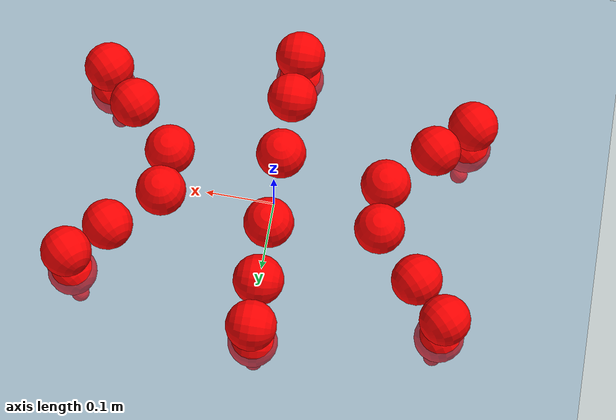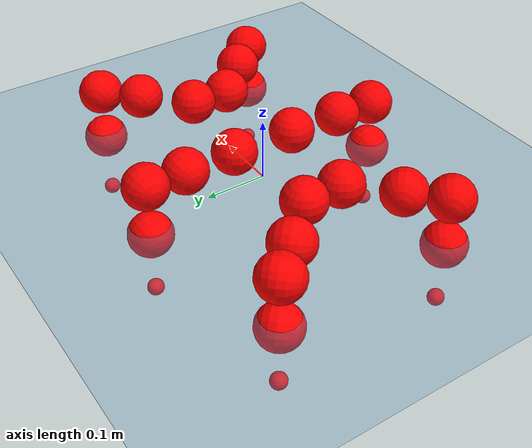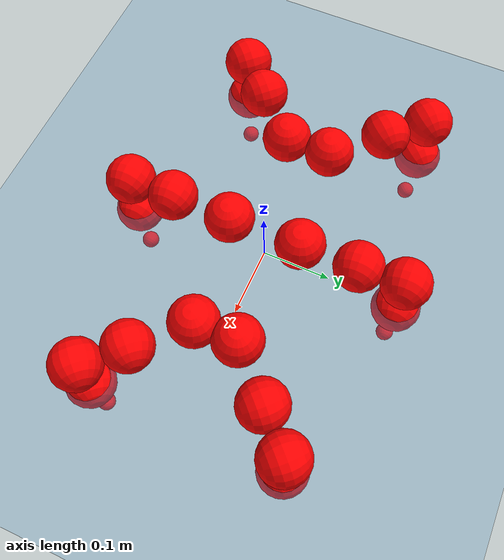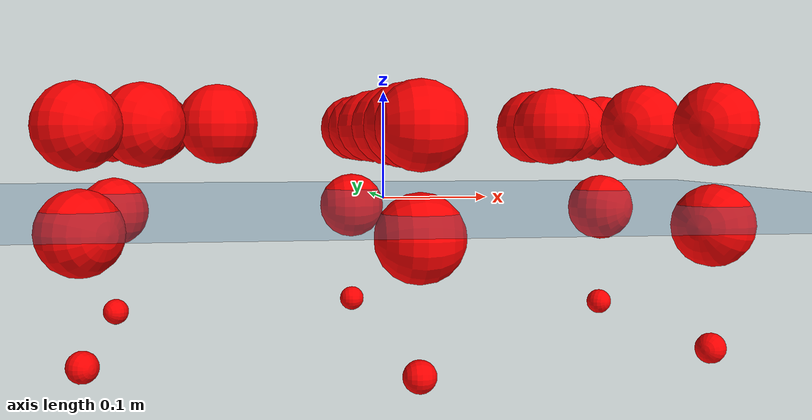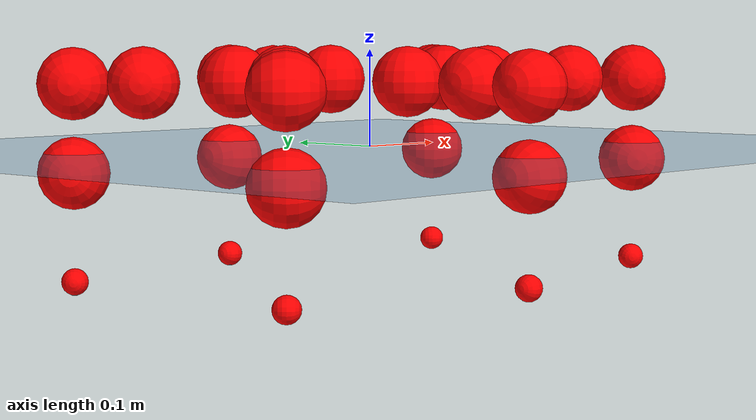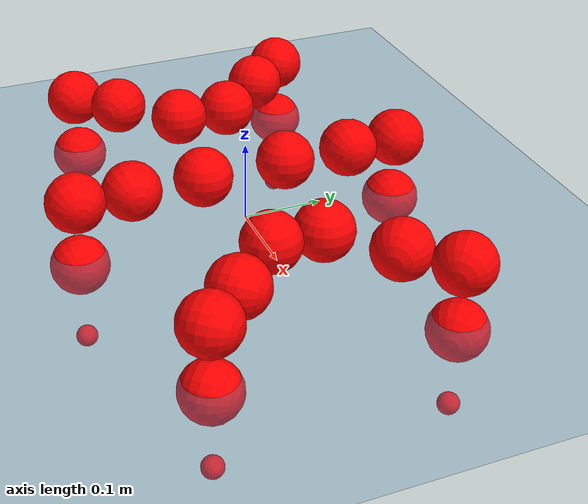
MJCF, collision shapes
<mujoco model="Golem">
  <compiler angle="radian" assetdir="assets" balanceinertia="true" inertiafromgeom="false"/>

  <option timestep="0.005" density="1.2" viscosity="2e-05"/>

  <size nkey="1"/>

  <visual>
    <quality shadowsize="8192"/>
    <map shadowclip="0.5"/>
  </visual>

  <default>
    <default class="/">
      <joint armature="0.01" damping="0.01" frictionloss="0.01"/>
      <geom contype="0" conaffinity="0" group="1" solref="-1000 -80"/>
      <site size="0.01 0.005 0.005" group="5"/>
      <general forcelimited="true" biastype="affine" gainprm="25" biasprm="0 -25 -0.5"/>
      <default class="visual">
        <geom type="mesh" group="2"/>
      </default>
      <default class="collision">
        <geom group="3"/>
      </default>
      <default class="foot">
        <geom size="0.01 0 0" condim="6" group="4" priority="1" solimp="0.015 1 0.01"/>
      </default>
      <default class="reward_collision_sphere">
        <geom group="5" rgba="1 0 0 1"/>
      </default>
    </default>
  </default>

  <asset>
    <texture type="skybox" colorspace="auto" name="//unnamed_texture_0" builtin="gradient" rgb1="0.95 0.95 0.95" rgb2="0.95 0.95 0.95" width="100" height="600"/>
    <texture type="2d" colorspace="auto" name="texplane" builtin="checker" rgb1="0.345 0.575 0.748" rgb2="0.345 0.575 0.748" markrgb="1 1 1" width="512" height="512"/>
    <material name="MatPlane" class="/" texture="texplane" texuniform="true" texrepeat="2 2" specular="0.9"/>
    <mesh name="body" class="/" file="body.stl" scale="0.001 0.001 0.001"/>
    <mesh name="coxa" class="/" file="coxa.stl" scale="0.001 0.001 0.001"/>
    <mesh name="femur" class="/" file="femur.stl" scale="0.001 0.001 0.001"/>
    <mesh name="tibia" class="/" file="tibia.stl" scale="0.001 0.001 0.001"/>
    <mesh name="tarsus" class="/" file="tarsus.stl" scale="0.001 0.001 0.001"/>
  </asset>

  <worldbody>
    <geom name="floor" class="/" size="100 100 0.125" type="plane" group="0" material="MatPlane"/>
    <light name="toplight_shadow" class="/" pos="0 0 5" dir="0.0990148 0.0990148 -0.990148" type="directional" ambient="0.04 0.04 0.04" diffuse="0.55 0.55 0.55" specular="0.12 0.12 0.12"/>
    <light name="toplight_fill" class="/" pos="0 0 5" dir="0.0990148 0.0990148 -0.990148" type="directional" castshadow="false" ambient="0.04 0.04 0.04" diffuse="0.3 0.3 0.3" specular="0.08 0.08 0.08"/>
    <body name="trunk" pos="-0.000400832 0.000469316 -0.000389563" quat="1 6.60342e-05 -0.000135085 0.000118875">
      <inertial pos="-0.000526951 -0.000397023 -0.00276164" quat="0.999991 -0.00307557 0.000425974 -0.00284471" mass="2.68678" diaginertia="0.0100714 0.00103376 0.0133928"/>
      <joint name="//unnamed_joint_0" type="free"/>
      <geom name="//unnamed_geom_1" class="/" pos="0 0 0.0678425" quat="1 0 0 0" type="mesh" rgba="0.9 0.9 0.9 1" mesh="body"/>
      <site name="imu" class="/" pos="0.128814 0.00178929 0.104576" size="0.00897322"/>
      <camera name="track" class="/" pos="0 -1.26667 0" quat="0.707107 0.707107 0 0" mode="trackcom"/>
      <camera name="ego_camera" class="/" pos="0.129817 0 0.106004" quat="-0.5 -0.5 0.5 0.5"/>
      <body name="coxa_RR" pos="-0.176417 -0.0532074 0.0699941" quat="0.38265 0.00012126 4.2768e-06 -0.923893">
        <inertial pos="0.000364133 0.000885716 0.00161389" quat="1 0.000262141 -0.00016604 0.000690172" mass="0.146038" diaginertia="0.0100458 0.00104032 0.0134497"/>
        <joint name="coxa_joint_RR" class="/" pos="0 0 0" axis="0.00196704 -0.00111911 -0.999997" range="-3.12112 3.13962" armature="0.00918463" damping="0" frictionloss="0.00893737"/>
        <geom name="//unnamed_geom_2" class="/" type="mesh" rgba="0.2 0.2 0.2 1" mesh="coxa"/>
        <geom name="//unnamed_geom_3" class="reward_collision_sphere" size="0.0358929" pos="-0.0299577 0 0"/>
        <body name="femur_RR" pos="0.0592283 0.00129457 -0.0015269" quat="0.500262 -0.499785 0.500297 0.499656">
          <inertial pos="0.000396187 -3.38994e-05 0.000947803" quat="1 0.000202878 4.74223e-05 -0.000121578" mass="0.143913" diaginertia="0.00999407 0.00102233 0.0132751"/>
          <joint name="femur_joint_RR" class="/" pos="0 0 0" axis="-0.000441739 0.00106634 -0.999999" range="-3.14028 3.13784" armature="0.00899117" damping="0" frictionloss="0.00870728"/>
          <geom name="//unnamed_geom_4" class="/" type="mesh" rgba="0.9 0.9 0.9 1" mesh="femur"/>
          <geom name="//unnamed_geom_5" class="reward_collision_sphere" size="0.0358929"/>
          <body name="tibia_RR" pos="0.00158665 -0.0671424 0.000106079" quat="4.03897e-06 1 3.38564e-05 -3.7289e-06">
            <inertial pos="0.000291853 -0.000295307 -0.000341621" quat="0.999996 0.00177592 0.000403609 -0.00216596" mass="0.14436" diaginertia="0.00991967 0.00101836 0.0134857"/>
            <joint name="tibia_joint_RR" class="/" pos="0 0 0" axis="0.00217533 0.003175 0.999993" range="-3.15665 3.1309" armature="0.00887966" damping="0" frictionloss="0.00910472"/>
            <geom name="//unnamed_geom_6" class="/" type="mesh" rgba="0.2 0.2 0.2 1" mesh="tibia"/>
            <geom name="//unnamed_geom_7" class="reward_collision_sphere" size="0.0358929"/>
            <body name="tarsus_RR" pos="0.0850143 -0.0006414 -0.000275697" quat="1 0.000475289 -1.54861e-05 -6.69984e-05">
              <inertial pos="0.0595962 0.00027865 0.00076775" quat="0.500088 0.500023 0.50009 0.499798" mass="0.142931" diaginertia="0.00986422 0.00100679 0.0133168"/>
              <joint name="tarsus_joint_RR" class="/" pos="0 0 0" axis="0.00193652 -0.00124219 0.999997" range="-3.12182 3.12942" armature="0.00890082" damping="0.00865337" frictionloss="0.00872678"/>
              <geom name="//unnamed_geom_8" class="/" type="mesh" rgba="0.9 0.9 0.9 1" mesh="tarsus"/>
              <geom name="foot_1" class="foot" size="0.00851077" pos="0.111842 0 0" quat="0 -0.707107 0 0.707107"/>
              <geom name="//unnamed_geom_10" class="reward_collision_sphere" size="0.0358929"/>
              <geom name="//unnamed_geom_11" class="reward_collision_sphere" size="0.0134598" pos="0.107348 0 0"/>
              <site name="foot_1" class="foot" pos="0.111842 0 0" quat="0 -0.707107 0 0.707107" size="0.00897322"/>
            </body>
          </body>
        </body>
      </body>
      <body name="coxa_RM" pos="-0.000840623 -0.0833834 0.0684331" quat="0.707203 -0.000211672 0.000400732 -0.70701">
        <inertial pos="-0.000583786 0.000222728 0.000539084" quat="1 -0.000200116 0.00024731 4.23606e-05" mass="0.143839" diaginertia="0.00988795 0.00101243 0.0134153"/>
        <joint name="coxa_joint_RM" class="/" pos="0 0 0" axis="-0.000431334 -0.000931166 -0.999999" range="-3.14355 3.13741" armature="0.0086434" damping="0.007613" frictionloss="0.00886944"/>
        <geom name="//unnamed_geom_12" class="/" type="mesh" rgba="0.2 0.2 0.2 1" mesh="coxa"/>
        <geom name="//unnamed_geom_13" class="reward_collision_sphere" size="0.0358929" pos="-0.0299577 0 0"/>
        <body name="femur_RM" pos="0.0582844 -0.000723385 -0.000387814" quat="0.499734 -0.500248 0.499938 0.50008">
          <inertial pos="0.000467076 0.000717835 0.000236845" quat="1 -9.19494e-05 0.00042353 0.000124877" mass="0.144107" diaginertia="0.00990535 0.00101513 0.0132836"/>
          <joint name="femur_joint_RM" class="/" pos="0 0 0" axis="0.00117294 0.00431772 -0.99999" range="-3.13636 3.13503" armature="0.00908774" damping="0.00278817" frictionloss="0.00935474"/>
          <geom name="//unnamed_geom_14" class="/" type="mesh" rgba="0.9 0.9 0.9 1" mesh="femur"/>
          <geom name="//unnamed_geom_15" class="reward_collision_sphere" size="0.0358929"/>
          <body name="tibia_RM" pos="0.00108831 -0.0675725 -0.000394356" quat="0.00010904 1 4.81338e-05 0.000414321">
            <inertial pos="0.00106423 -0.000128784 -0.000240207" quat="0.99999 -0.00253211 -0.00370953 0.000176116" mass="0.147008" diaginertia="0.0100314 0.00103152 0.0135845"/>
            <joint name="tibia_joint_RM" class="/" pos="0 0 0" axis="5.52369e-05 0.000271388 1" range="-3.14391 3.12057" armature="0.00891858" damping="0.00781881" frictionloss="0.00900558"/>
            <geom name="//unnamed_geom_16" class="/" type="mesh" rgba="0.2 0.2 0.2 1" mesh="tibia"/>
            <geom name="//unnamed_geom_17" class="reward_collision_sphere" size="0.0358929"/>
            <body name="tarsus_RM" pos="0.0866193 0.000898028 0.000655536" quat="1 5.85943e-06 -6.22774e-06 2.85184e-06">
              <inertial pos="0.0597818 0.000392807 0.000299968" quat="0.499125 0.500462 0.50054 0.499872" mass="0.146398" diaginertia="0.00993146 0.0010278 0.0135667"/>
              <joint name="tarsus_joint_RM" class="/" pos="0 0 0" axis="-0.000451053 0.00107 0.999999" range="-3.12697 3.1461" armature="0.00896434" damping="0.0060559" frictionloss="0.00924891"/>
              <geom name="//unnamed_geom_18" class="/" type="mesh" rgba="0.9 0.9 0.9 1" mesh="tarsus"/>
              <geom name="foot_2" class="foot" size="0.00870761" pos="0.111842 0 0" quat="0 -0.707107 0 0.707107"/>
              <geom name="//unnamed_geom_20" class="reward_collision_sphere" size="0.0358929"/>
              <geom name="//unnamed_geom_21" class="reward_collision_sphere" size="0.0134598" pos="0.107348 0 0"/>
              <site name="foot_2" class="foot" pos="0.111842 0 0" quat="0 -0.707107 0 0.707107" size="0.00897322"/>
            </body>
          </body>
        </body>
      </body>
      <body name="coxa_RF" pos="0.177781 -0.0523447 0.0683062" quat="0.923901 2.26312e-05 6.2362e-05 -0.38263">
        <inertial pos="-0.000207998 -0.000354664 -0.000424799" quat="1 0.000576651 0.000724493 0.000131903" mass="0.146781" diaginertia="0.0100662 0.00102863 0.0135128"/>
        <joint name="coxa_joint_RF" class="/" pos="0 0 0" axis="-0.0043385 0.00341941 -0.999985" stiffness="0.000467875" range="-3.13067 3.12275" armature="0.0091213" damping="0.00211777" frictionloss="0.00898932"/>
        <geom name="//unnamed_geom_22" class="/" type="mesh" rgba="0.2 0.2 0.2 1" mesh="coxa"/>
        <geom name="//unnamed_geom_23" class="reward_collision_sphere" size="0.0358929" pos="-0.0299577 0 0"/>
        <body name="femur_RF" pos="0.0594334 0.00094997 0.000116163" quat="0.5 -0.500016 0.499996 0.499988">
          <inertial pos="0.000902373 6.75737e-05 -0.000231063" quat="1 0.000425079 -0.000500248 -0.000752558" mass="0.145374" diaginertia="0.0100934 0.00102965 0.0134781"/>
          <joint name="femur_joint_RF" class="/" pos="0 0 0" axis="9.7277e-05 8.46663e-06 -1" range="-3.1341 3.15289" armature="0.00893272" damping="0.00928739" frictionloss="0.00929911"/>
          <geom name="//unnamed_geom_24" class="/" type="mesh" rgba="0.9 0.9 0.9 1" mesh="femur"/>
          <geom name="//unnamed_geom_25" class="reward_collision_sphere" size="0.0358929"/>
          <body name="tibia_RF" pos="-0.000408915 -0.0680772 -0.000530314" quat="-5.81406e-05 1 -2.40177e-05 6.74415e-06">
            <inertial pos="2.02731e-05 7.29222e-05 -0.000770091" quat="1 7.49395e-05 0.000112341 -0.000863434" mass="0.144024" diaginertia="0.00986388 0.00101575 0.0132732"/>
            <joint name="tibia_joint_RF" class="/" pos="0 0 0" axis="-0.000491474 0.000296771 1" range="-3.13673 3.12112" armature="0.00904541" damping="0.00800457" frictionloss="0.0085798"/>
            <geom name="//unnamed_geom_26" class="/" type="mesh" rgba="0.2 0.2 0.2 1" mesh="tibia"/>
            <geom name="//unnamed_geom_27" class="reward_collision_sphere" size="0.0358929"/>
            <body name="tarsus_RF" pos="0.0870219 -0.000149183 0.000946513" quat="1 -7.1588e-05 0.000264988 0.000158775">
              <inertial pos="0.060019 0.000561374 0.000236579" quat="0.499623 0.499903 0.500247 0.500228" mass="0.14284" diaginertia="0.00979916 0.00100699 0.0131269"/>
              <joint name="tarsus_joint_RF" class="/" pos="0 0 0" axis="0.00375258 0.00110184 0.999992" stiffness="0.0240728" range="-3.15129 3.13701" armature="0.00919255" damping="0" frictionloss="0.00918776"/>
              <geom name="//unnamed_geom_28" class="/" type="mesh" rgba="0.9 0.9 0.9 1" mesh="tarsus"/>
              <geom name="foot_3" class="foot" size="0.00881624" pos="0.111842 0 0" quat="0 -0.707107 0 0.707107"/>
              <geom name="//unnamed_geom_30" class="reward_collision_sphere" size="0.0358929"/>
              <geom name="//unnamed_geom_31" class="reward_collision_sphere" size="0.0134598" pos="0.107348 0 0"/>
              <site name="foot_3" class="foot" pos="0.111842 0 0" quat="0 -0.707107 0 0.707107" size="0.00897322"/>
            </body>
          </body>
        </body>
      </body>
      <body name="coxa_LR" pos="-0.177709 0.0555732 0.0696901" quat="0.382682 3.38564e-06 6.78977e-07 0.92388">
        <inertial pos="0.000907243 0.000217344 0.0013014" quat="0.999995 -0.000231247 -0.00206839 0.00247962" mass="0.146645" diaginertia="0.0101338 0.0010379 0.013367"/>
        <joint name="coxa_joint_LR" class="/" pos="0 0 0" axis="-0.00040791 0.0002987 -1" range="-3.12156 3.12529" armature="0.00876769" damping="0.00944888" frictionloss="0.00883478"/>
        <geom name="//unnamed_geom_32" class="/" type="mesh" rgba="0.2 0.2 0.2 1" mesh="coxa"/>
        <geom name="//unnamed_geom_33" class="reward_collision_sphere" size="0.0358929" pos="-0.0299577 0 0"/>
        <body name="femur_LR" pos="0.0599997 -0.00155706 -0.00102125" quat="0.500082 -0.499973 0.499987 0.499958">
          <inertial pos="-0.000162846 -0.00127862 0.000239798" quat="1 -6.29519e-05 2.96964e-05 -0.000297561" mass="0.144176" diaginertia="0.00986072 0.00100766 0.0132539"/>
          <joint name="femur_joint_LR" class="/" pos="0 0 0" axis="0.00136801 0.000699039 0.999999" range="-3.13952 3.14195" armature="0.00894681" damping="0" frictionloss="0.00899498"/>
          <geom name="//unnamed_geom_34" class="/" type="mesh" rgba="0.9 0.9 0.9 1" mesh="femur"/>
          <geom name="//unnamed_geom_35" class="reward_collision_sphere" size="0.0358929"/>
          <body name="tibia_LR" pos="0.000737267 -0.0686809 -0.00272552" quat="3.69035e-05 1 -0.000299275 0.000244439">
            <inertial pos="-0.00110387 0.0005934 0.000691457" quat="1 0.000121948 -0.000530412 -0.000648499" mass="0.145787" diaginertia="0.0100464 0.00103652 0.0134545"/>
            <joint name="tibia_joint_LR" class="/" pos="0 0 0" axis="-0.00057163 -0.000276479 -1" range="-3.15646 3.14133" armature="0.00900646" damping="0.00395547" frictionloss="0.00900217"/>
            <geom name="//unnamed_geom_36" class="/" type="mesh" rgba="0.2 0.2 0.2 1" mesh="tibia"/>
            <geom name="//unnamed_geom_37" class="reward_collision_sphere" size="0.0358929"/>
            <body name="tarsus_LR" pos="0.0880483 0.000303765 0.000441768" quat="1 0.000362315 5.79317e-05 -0.000224719">
              <inertial pos="0.0606444 -9.84038e-05 7.00472e-05" quat="0.50126 0.499041 0.498792 0.500902" mass="0.14445" diaginertia="0.00988981 0.00103132 0.0134105"/>
              <joint name="tarsus_joint_LR" class="/" pos="0 0 0" axis="0.00292618 0.00259347 -0.999992" range="-3.1268 3.15653" armature="0.0092966" damping="0" frictionloss="0.00937668"/>
              <geom name="//unnamed_geom_38" class="/" type="mesh" rgba="0.9 0.9 0.9 1" mesh="tarsus"/>
              <geom name="foot_4" class="foot" size="0.00923789" pos="0.111842 0 0" quat="0.707107 0 -0.707107 0"/>
              <geom name="//unnamed_geom_40" class="reward_collision_sphere" size="0.0358929"/>
              <geom name="//unnamed_geom_41" class="reward_collision_sphere" size="0.0134598" pos="0.107348 0 0"/>
              <site name="foot_4" class="foot" pos="0.111842 0 0" quat="0.707107 0 -0.707107 0" size="0.00897322"/>
            </body>
          </body>
        </body>
      </body>
      <body name="coxa_LM" pos="-0.00190449 0.0826114 0.0692017" quat="0.707227 -2.45038e-05 6.59648e-05 0.706986">
        <inertial pos="6.16138e-05 0.000725694 0.000197274" quat="1 -0.000163524 0.00048575 -0.000409202" mass="0.146615" diaginertia="0.0100264 0.00102799 0.0134817"/>
        <joint name="coxa_joint_LM" class="/" pos="0 0 0" axis="-0.00210514 0.00564891 -0.999982" range="-3.14151 3.14784" armature="0.00902678" damping="0.00895547" frictionloss="0.0085691"/>
        <geom name="//unnamed_geom_42" class="/" type="mesh" rgba="0.2 0.2 0.2 1" mesh="coxa"/>
        <geom name="//unnamed_geom_43" class="reward_collision_sphere" size="0.0358929" pos="-0.0299577 0 0"/>
        <body name="femur_LM" pos="0.0551405 0.000834587 -0.000623046" quat="0.500092 -0.500019 0.500048 0.499841">
          <inertial pos="-0.000901709 -0.00043217 -0.00020006" quat="0.999995 -0.00319326 -0.000348717 0.000674391" mass="0.142414" diaginertia="0.00984003 0.00101763 0.0132624"/>
          <joint name="femur_joint_LM" class="/" pos="0 0 0" axis="0.00254472 -0.00221375 0.999994" range="-3.13527 3.136" armature="0.0087881" damping="0.000322308" frictionloss="0.00934246"/>
          <geom name="//unnamed_geom_44" class="/" type="mesh" rgba="0.9 0.9 0.9 1" mesh="femur"/>
          <geom name="//unnamed_geom_45" class="reward_collision_sphere" size="0.0358929"/>
          <body name="tibia_LM" pos="-0.000322626 -0.0664707 0.00182305" quat="6.77404e-05 1 -2.76804e-05 2.65243e-06">
            <inertial pos="-0.00102298 -0.000451065 0.000174482" quat="1 0.000136918 3.52872e-06 4.08433e-05" mass="0.144398" diaginertia="0.00991627 0.00102325 0.013275"/>
            <joint name="tibia_joint_LM" class="/" pos="0 0 0" axis="0.00048767 -0.00290523 -0.999996" range="-3.13904 3.13928" armature="0.00899072" damping="0.00283532" frictionloss="0.0091883"/>
            <geom name="//unnamed_geom_46" class="/" type="mesh" rgba="0.2 0.2 0.2 1" mesh="tibia"/>
            <geom name="//unnamed_geom_47" class="reward_collision_sphere" size="0.0358929"/>
            <body name="tarsus_LM" pos="0.0880308 -0.000423008 -0.00122498" quat="1 -4.83786e-06 -8.54407e-05 -4.40374e-05">
              <inertial pos="0.0605842 -0.000109451 -0.000958724" quat="0.500105 0.500255 0.499782 0.499858" mass="0.144336" diaginertia="0.0100426 0.00102342 0.0133963"/>
              <joint name="tarsus_joint_LM" class="/" pos="0 0 0" axis="0.00105698 -0.00022513 -0.999999" range="-3.13946 3.14247" armature="0.00910601" damping="0.00514952" frictionloss="0.00897423"/>
              <geom name="//unnamed_geom_48" class="/" type="mesh" rgba="0.9 0.9 0.9 1" mesh="tarsus"/>
              <geom name="foot_5" class="foot" size="0.00911086" pos="0.111842 0 0" quat="0.707107 0 -0.707107 0"/>
              <geom name="//unnamed_geom_50" class="reward_collision_sphere" size="0.0358929"/>
              <geom name="//unnamed_geom_51" class="reward_collision_sphere" size="0.0134598" pos="0.107348 0 0"/>
              <site name="foot_5" class="foot" pos="0.111842 0 0" quat="0.707107 0 -0.707107 0" size="0.00897322"/>
            </body>
          </body>
        </body>
      </body>
      <body name="coxa_LF" pos="0.177957 0.053062 0.0683249" quat="0.923882 0.000319139 -4.58555e-05 0.382678">
        <inertial pos="0.000242817 0.000336744 -8.38102e-05" quat="0.999994 -0.000185477 -0.000541872 -0.00341022" mass="0.146612" diaginertia="0.00995472 0.00102423 0.0135764"/>
        <joint name="coxa_joint_LF" class="/" pos="0 0 0" axis="-0.000437891 0.00248484 -0.999997" stiffness="0.000369129" range="-3.14699 3.13934" armature="0.00919157" damping="0.00326116" frictionloss="0.00940868"/>
        <geom name="//unnamed_geom_52" class="/" type="mesh" rgba="0.2 0.2 0.2 1" mesh="coxa"/>
        <geom name="//unnamed_geom_53" class="reward_collision_sphere" size="0.0358929" pos="-0.0299577 0 0"/>
        <body name="femur_LF" pos="0.0596817 -0.000410908 -0.00026869" quat="0.499986 -0.49997 0.499974 0.50007">
          <inertial pos="-0.000853942 -0.000435451 0.00096958" quat="0.999999 -0.000465743 -0.0010819 -0.00025153" mass="0.145263" diaginertia="0.00991115 0.00101705 0.0133342"/>
          <joint name="femur_joint_LF" class="/" pos="0 0 0" axis="0.0019717 -0.00164471 0.999997" range="-3.14443 3.14487" armature="0.00855945" damping="0.00348522" frictionloss="0.00916326"/>
          <geom name="//unnamed_geom_54" class="/" type="mesh" rgba="0.9 0.9 0.9 1" mesh="femur"/>
          <geom name="//unnamed_geom_55" class="reward_collision_sphere" size="0.0358929"/>
          <body name="tibia_LF" pos="9.90009e-05 -0.0692067 0.00039763" quat="-0.000351444 1 -0.000378322 0.000196687">
            <inertial pos="0.000425155 -0.000913858 -0.000332175" quat="1 -3.41545e-05 -3.32086e-05 -3.40131e-05" mass="0.141949" diaginertia="0.00972206 0.00100735 0.0132005"/>
            <joint name="tibia_joint_LF" class="/" pos="0 0 0" axis="-0.000861224 0.000601806 -0.999999" range="-3.14232 3.14144" armature="0.00856598" damping="0" frictionloss="0.00898019"/>
            <geom name="//unnamed_geom_56" class="/" type="mesh" rgba="0.2 0.2 0.2 1" mesh="tibia"/>
            <geom name="//unnamed_geom_57" class="reward_collision_sphere" size="0.0358929"/>
            <body name="tarsus_LF" pos="0.0881332 0.000380422 0.000376933" quat="1 6.8638e-05 7.64326e-05 0.000143933">
              <inertial pos="0.0603713 -0.000640119 -0.000410006" quat="0.502345 0.499587 0.501481 0.496568" mass="0.144098" diaginertia="0.00978653 0.00101452 0.0131537"/>
              <joint name="tarsus_joint_LF" class="/" pos="0 0 0" axis="0.00278643 0.002254 -0.999994" range="-3.1294 3.13606" armature="0.00869618" damping="0.0147643" frictionloss="0.00866607"/>
              <geom name="//unnamed_geom_58" class="/" type="mesh" rgba="0.9 0.9 0.9 1" mesh="tarsus"/>
              <geom name="foot_6" class="foot" size="0.00887255" pos="0.111842 0 0" quat="0.707107 0 -0.707107 0"/>
              <geom name="//unnamed_geom_60" class="reward_collision_sphere" size="0.0358929"/>
              <geom name="//unnamed_geom_61" class="reward_collision_sphere" size="0.0134598" pos="0.107348 0 0"/>
              <site name="foot_6" class="foot" pos="0.111842 0 0" quat="0.707107 0 -0.707107 0" size="0.00897322"/>
            </body>
          </body>
        </body>
      </body>
    </body>
  </worldbody>

  <contact>
    <pair class="/" geom1="floor" geom2="foot_1" name="//unnamed_contact_0"/>
    <pair class="/" geom1="floor" geom2="foot_2" name="//unnamed_contact_1"/>
    <pair class="/" geom1="floor" geom2="foot_3" name="//unnamed_contact_2"/>
    <pair class="/" geom1="floor" geom2="foot_4" name="//unnamed_contact_3"/>
    <pair class="/" geom1="floor" geom2="foot_5" name="//unnamed_contact_4"/>
    <pair class="/" geom1="floor" geom2="foot_6" name="//unnamed_contact_5"/>
  </contact>

  <actuator>
    <general name="coxa_joint_RR" class="/" joint="coxa_joint_RR" forcerange="-6.59196 6.59196" gainprm="21.3239" biasprm="0 -21.3239 -0.473523"/>
    <general name="femur_joint_RR" class="/" joint="femur_joint_RR" forcerange="-6.57596 6.57596" gainprm="21.3239" biasprm="0 -21.3239 -0.473523"/>
    <general name="tibia_joint_RR" class="/" joint="tibia_joint_RR" forcerange="-6.50221 6.50221" gainprm="21.3239" biasprm="0 -21.3239 -0.473523"/>
    <general name="tarsus_joint_RR" class="/" joint="tarsus_joint_RR" forcerange="-6.52675 6.52675" gainprm="21.3239" biasprm="0 -21.3239 -0.473523"/>
    <general name="coxa_joint_RM" class="/" joint="coxa_joint_RM" forcerange="-6.54363 6.54363" gainprm="21.3239" biasprm="0 -21.3239 -0.473523"/>
    <general name="femur_joint_RM" class="/" joint="femur_joint_RM" forcerange="-6.56519 6.56519" gainprm="21.3239" biasprm="0 -21.3239 -0.473523"/>
    <general name="tibia_joint_RM" class="/" joint="tibia_joint_RM" forcerange="-6.56913 6.56913" gainprm="21.3239" biasprm="0 -21.3239 -0.473523"/>
    <general name="tarsus_joint_RM" class="/" joint="tarsus_joint_RM" forcerange="-6.68008 6.68008" gainprm="21.3239" biasprm="0 -21.3239 -0.473523"/>
    <general name="coxa_joint_RF" class="/" joint="coxa_joint_RF" forcerange="-6.34244 6.34244" gainprm="21.3239" biasprm="0 -21.3239 -0.473523"/>
    <general name="femur_joint_RF" class="/" joint="femur_joint_RF" forcerange="-6.47796 6.47796" gainprm="21.3239" biasprm="0 -21.3239 -0.473523"/>
    <general name="tibia_joint_RF" class="/" joint="tibia_joint_RF" forcerange="-6.33543 6.33543" gainprm="21.3239" biasprm="0 -21.3239 -0.473523"/>
    <general name="tarsus_joint_RF" class="/" joint="tarsus_joint_RF" forcerange="-6.75213 6.75213" gainprm="21.3239" biasprm="0 -21.3239 -0.473523"/>
    <general name="coxa_joint_LR" class="/" joint="coxa_joint_LR" forcerange="-6.77269 6.77269" gainprm="21.3239" biasprm="0 -21.3239 -0.473523"/>
    <general name="femur_joint_LR" class="/" joint="femur_joint_LR" forcerange="-6.50738 6.50738" gainprm="21.3239" biasprm="0 -21.3239 -0.473523"/>
    <general name="tibia_joint_LR" class="/" joint="tibia_joint_LR" forcerange="-6.53254 6.53254" gainprm="21.3239" biasprm="0 -21.3239 -0.473523"/>
    <general name="tarsus_joint_LR" class="/" joint="tarsus_joint_LR" forcerange="-6.77404 6.77404" gainprm="21.3239" biasprm="0 -21.3239 -0.473523"/>
    <general name="coxa_joint_LM" class="/" joint="coxa_joint_LM" forcerange="-6.43838 6.43838" gainprm="21.3239" biasprm="0 -21.3239 -0.473523"/>
    <general name="femur_joint_LM" class="/" joint="femur_joint_LM" forcerange="-6.76928 6.76928" gainprm="21.3239" biasprm="0 -21.3239 -0.473523"/>
    <general name="tibia_joint_LM" class="/" joint="tibia_joint_LM" forcerange="-6.62692 6.62692" gainprm="21.3239" biasprm="0 -21.3239 -0.473523"/>
    <general name="tarsus_joint_LM" class="/" joint="tarsus_joint_LM" forcerange="-6.43061 6.43061" gainprm="21.3239" biasprm="0 -21.3239 -0.473523"/>
    <general name="coxa_joint_LF" class="/" joint="coxa_joint_LF" forcerange="-6.59119 6.59119" gainprm="21.3239" biasprm="0 -21.3239 -0.473523"/>
    <general name="femur_joint_LF" class="/" joint="femur_joint_LF" forcerange="-6.77191 6.77191" gainprm="21.3239" biasprm="0 -21.3239 -0.473523"/>
    <general name="tibia_joint_LF" class="/" joint="tibia_joint_LF" forcerange="-6.33062 6.33062" gainprm="21.3239" biasprm="0 -21.3239 -0.473523"/>
    <general name="tarsus_joint_LF" class="/" joint="tarsus_joint_LF" forcerange="-6.59011 6.59011" gainprm="21.3239" biasprm="0 -21.3239 -0.473523"/>
  </actuator>

  <sensor>
    <gyro site="imu" name="imu_angular_velocity"/>
    <velocimeter site="imu" name="imu_linear_velocity"/>
    <framelinvel objtype="site" objname="foot_1" name="foot_1_global_linear_velocity"/>
    <framelinvel objtype="site" objname="foot_2" name="foot_2_global_linear_velocity"/>
    <framelinvel objtype="site" objname="foot_3" name="foot_3_global_linear_velocity"/>
    <framelinvel objtype="site" objname="foot_4" name="foot_4_global_linear_velocity"/>
    <framelinvel objtype="site" objname="foot_5" name="foot_5_global_linear_velocity"/>
    <framelinvel objtype="site" objname="foot_6" name="foot_6_global_linear_velocity"/>
  </sensor>

  <keyframe>
    <key name="home" qpos="0 0 0.1457 1 0 0 0 0 0 0 0 0 0 0 0 0 0 0 0 0 0 0 0 0 0 0 0 0 0 0 0"/>
  </keyframe>
</mujoco>
